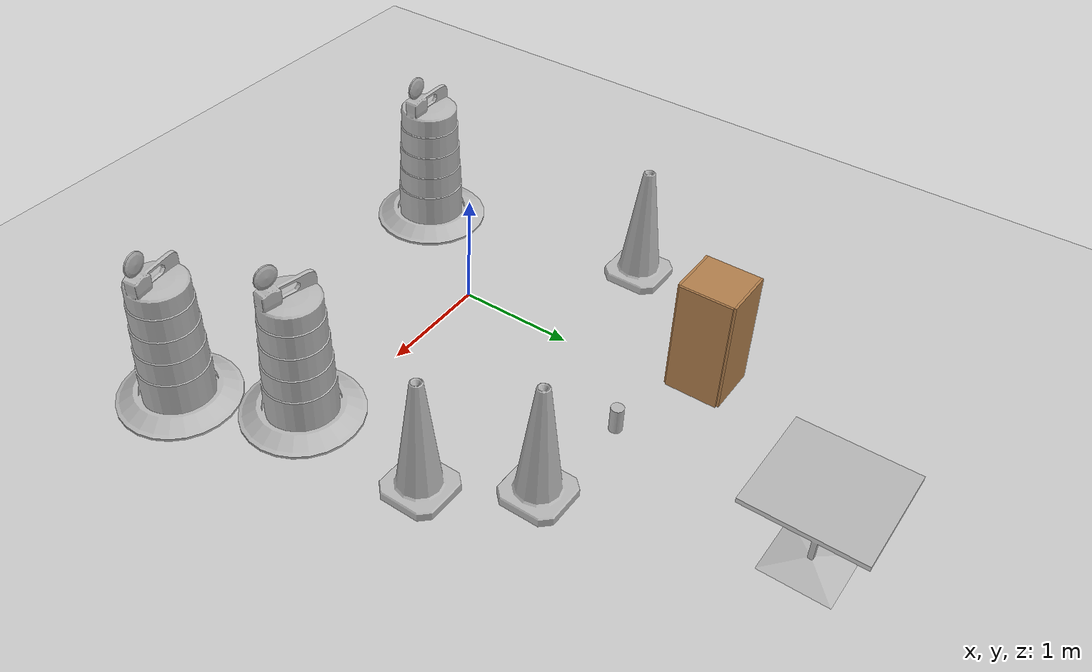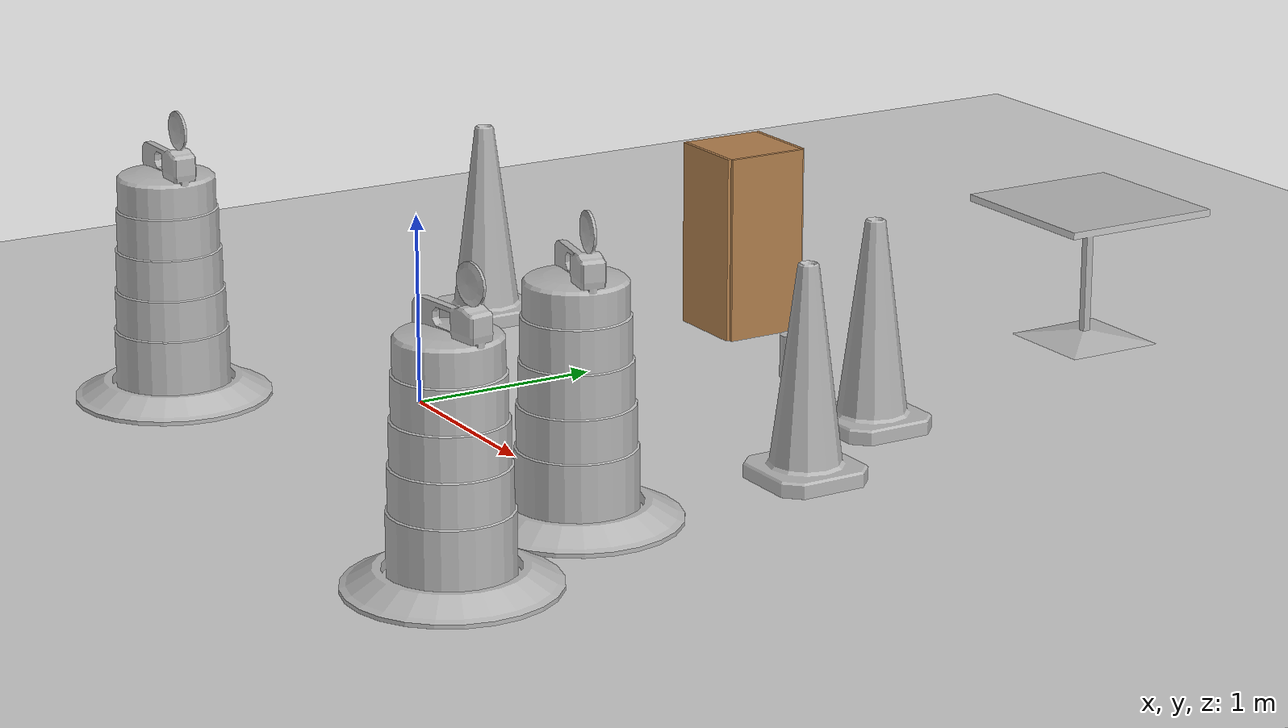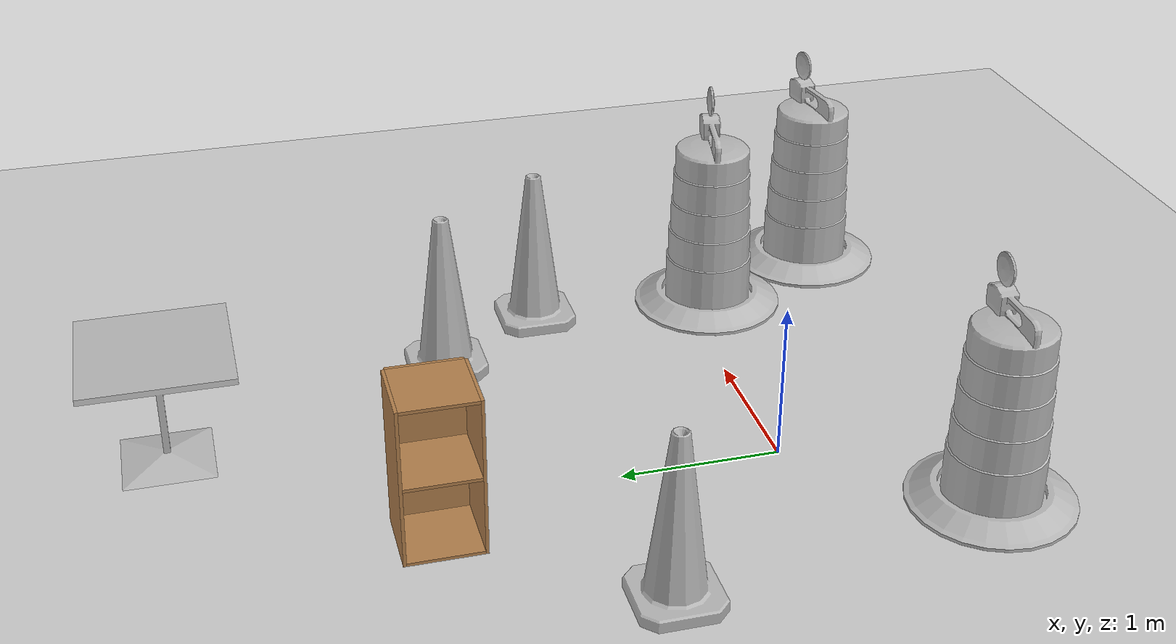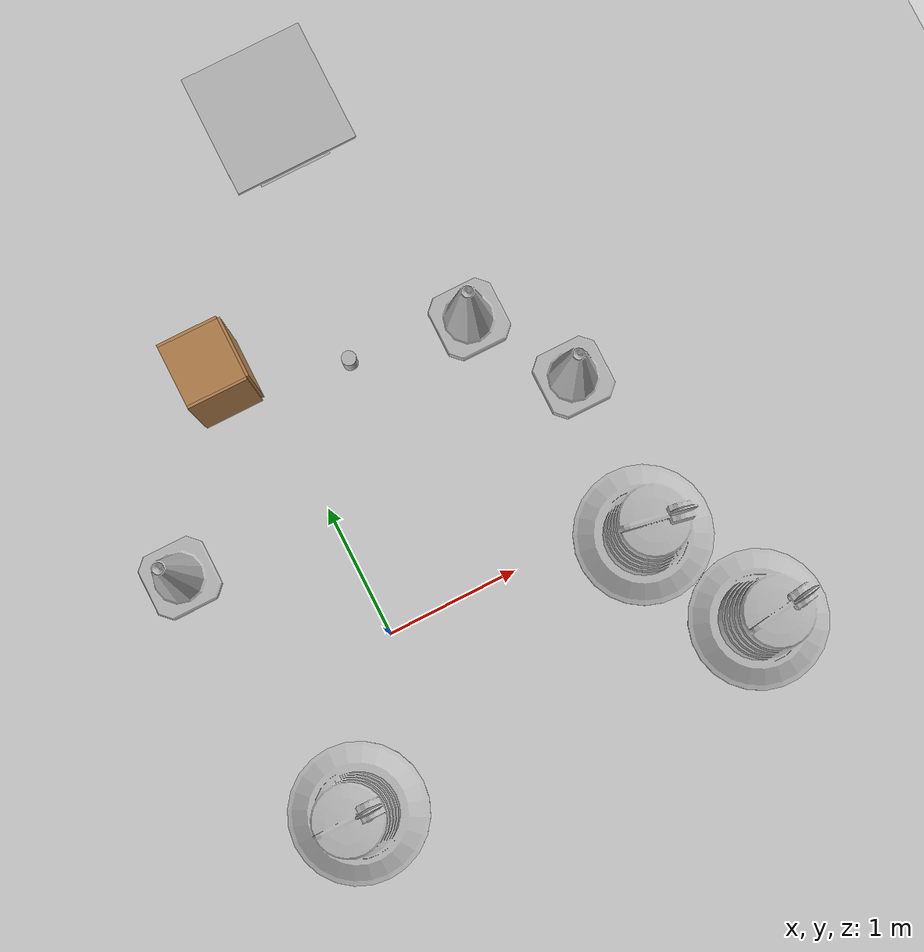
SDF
<sdf version="1.7">
 <world name="default">
  <light name="sun" type="directional">
   <pose>0 0 10 0 -0 0</pose>
   <diffuse>0.8 0.8 0.8 1</diffuse>
   <specular>0.2 0.2 0.2 1</specular>
   <attenuation>
    <range>1000</range>
    <constant>0.9</constant>
    <linear>0.01</linear>
    <quadratic>0.001</quadratic>
   </attenuation>
   <direction>-0.5 0.1 -0.9</direction>
   <spot><inner_angle>0</inner_angle><outer_angle>0</outer_angle><falloff>0</falloff></spot>
  </light>
  <model name="ground_plane">
   <static>1</static>
   <link name="link">
    <collision name="collision">
     <geometry><plane><normal>0 0 1</normal><size>100 100</size></plane></geometry>
     <surface><friction><ode><mu>100</mu><mu2>50</mu2></ode></friction></surface>
    </collision>
    <visual name="visual">
     <cast_shadows>0</cast_shadows>
     <geometry><plane><normal>0 0 1</normal><size>100 100</size></plane></geometry>
     <material>
      <script><uri>file://media/materials/scripts/gazebo.material</uri><name>Gazebo/Grey</name></script>
     </material>
    </visual>
   </link>
  </model>
  <gravity>0 0 -9.8</gravity>
  <magnetic_field>6e-06 2.3e-05 -4.2e-05</magnetic_field>
  <atmosphere type="adiabatic"/>
  <physics type="ode">
   <max_step_size>0.001</max_step_size>
   <real_time_factor>1</real_time_factor>
   <real_time_update_rate>1000</real_time_update_rate>
  </physics>
  <scene><ambient>0.4 0.4 0.4 1</ambient><background>0.7 0.7 0.7 1</background><shadows>1</shadows></scene>
  <audio><device>default</device></audio>
  <spherical_coordinates>
   <surface_model>EARTH_WGS84</surface_model>
   <latitude_deg>0</latitude_deg>
   <longitude_deg>0</longitude_deg>
   <elevation>0</elevation>
   <heading_deg>0</heading_deg>
  </spherical_coordinates>
  <light name="sun" type="directional">
   <pose>-2.60139 -0.412845 10 0 -0 0</pose>
   <diffuse>0.8 0.8 0.8 1</diffuse>
   <specular>0.2 0.2 0.2 1</specular>
   <attenuation>
    <range>1000</range>
    <constant>0.9</constant>
    <linear>0.01</linear>
    <quadratic>0.001</quadratic>
   </attenuation>
   <direction>-0.5 0.1 -0.9</direction>
  </light>
  <model name="beer">
   <link name="link">
    <pose>0 0 0.115 0 -0 0</pose>
    <inertial>
     <mass>0.39</mass>
     <inertia><ixx>0.00058</ixx><ixy>0</ixy><ixz>0</ixz><iyy>0.00058</iyy><iyz>0</iyz><izz>0.00019</izz></inertia>
    </inertial>
    <collision name="collision">
     <geometry><cylinder><radius>0.055</radius><length>0.23</length></cylinder></geometry>
    </collision>
    <visual name="visual">
     <geometry><cylinder><radius>0.055</radius><length>0.23</length></cylinder></geometry>
     <material>
      <script>
       <uri>model://beer/materials/scripts</uri>
       <uri>model://beer/materials/textures</uri>
       <name>Beer/Diffuse</name>
      </script>
     </material>
    </visual>
   </link>
   <pose>0.616062 1.88125 -7e-06 0 0 -1e-05</pose>
  </model>
  <model name="cabinet">
   <static>1</static>
   <link name="cabinet_bottom_plate">
    <inertial>
     <pose>0 0 -1 0 -0 0</pose>
     <inertia><ixx>2.05</ixx><ixy>0</ixy><ixz>0</ixz><iyy>2.05</iyy><iyz>0</iyz><izz>2.05</izz></inertia>
     <mass>25</mass>
    </inertial>
    <collision name="cabinet_bottom_plate_geom">
     <pose>0 0 0.01 0 -0 0</pose>
     <geometry><box><size>0.45 0.45 0.02</size></box></geometry>
    </collision>
    <visual name="cabinet_bottom_plate_geom_visual">
     <pose>0 0 0.01 0 -0 0</pose>
     <geometry><box><size>0.45 0.45 0.02</size></box></geometry>
     <material>
      <script><uri>file://media/materials/scripts/gazebo.material</uri><name>Gazebo/Wood</name></script>
     </material>
    </visual>
    <collision name="cabinet_bottom_plate_geom_cabinet_back_plate">
     <pose>0.235 0 0.51 0 -0 0</pose>
     <geometry><box><size>0.02 0.45 1.02</size></box></geometry>
    </collision>
    <visual name="cabinet_bottom_plate_geom_cabinet_back_plate_visual">
     <pose>0.235 0 0.51 0 -0 0</pose>
     <geometry><box><size>0.02 0.45 1.02</size></box></geometry>
     <material>
      <script><uri>file://media/materials/scripts/gazebo.material</uri><name>Gazebo/Wood</name></script>
     </material>
    </visual>
    <collision name="cabinet_bottom_plate_geom_cabinet_left_plate">
     <pose>0 0.235 0.51 0 -0 0</pose>
     <geometry><box><size>0.45 0.02 1.02</size></box></geometry>
    </collision>
    <visual name="cabinet_bottom_plate_geom_cabinet_left_plate_visual">
     <pose>0 0.235 0.51 0 -0 0</pose>
     <geometry><box><size>0.45 0.02 1.02</size></box></geometry>
     <material>
      <script><uri>file://media/materials/scripts/gazebo.material</uri><name>Gazebo/Wood</name></script>
     </material>
    </visual>
    <collision name="cabinet_bottom_plate_geom_cabinet_middle_plate">
     <pose>0 0 0.51 0 -0 0</pose>
     <geometry><box><size>0.45 0.45 0.02</size></box></geometry>
    </collision>
    <visual name="cabinet_bottom_plate_geom_cabinet_middle_plate_visual">
     <pose>0 0 0.51 0 -0 0</pose>
     <geometry><box><size>0.45 0.45 0.02</size></box></geometry>
     <material>
      <script><uri>file://media/materials/scripts/gazebo.material</uri><name>Gazebo/Wood</name></script>
     </material>
    </visual>
    <collision name="cabinet_bottom_plate_geom_cabinet_right_plate">
     <pose>0 -0.235 0.51 0 -0 0</pose>
     <geometry><box><size>0.45 0.02 1.02</size></box></geometry>
    </collision>
    <visual name="cabinet_bottom_plate_geom_cabinet_right_plate_visual">
     <pose>0 -0.235 0.51 0 -0 0</pose>
     <geometry><box><size>0.45 0.02 1.02</size></box></geometry>
     <material>
      <script><uri>file://media/materials/scripts/gazebo.material</uri><name>Gazebo/Wood</name></script>
     </material>
    </visual>
    <collision name="cabinet_bottom_plate_geom_cabinet_top_plate">
     <pose>0 0 1.01 0 -0 0</pose>
     <geometry><box><size>0.45 0.45 0.02</size></box></geometry>
    </collision>
    <visual name="cabinet_bottom_plate_geom_cabinet_top_plate_visual">
     <pose>0 0 1.01 0 -0 0</pose>
     <geometry><box><size>0.45 0.45 0.02</size></box></geometry>
     <material>
      <script><uri>file://media/materials/scripts/gazebo.material</uri><name>Gazebo/Wood</name></script>
     </material>
    </visual>
   </link>
   <pose>-0.296742 2.16793 0 0 -0 0</pose>
  </model>
  <model name="cafe_table">
   <static>1</static>
   <link name="link">
    <collision name="surface">
     <pose>0 0 0.755 0 -0 0</pose>
     <geometry><box><size>0.913 0.913 0.04</size></box></geometry>
    </collision>
    <collision name="column">
     <pose>0 0 0.37 0 -0 0</pose>
     <geometry><box><size>0.042 0.042 0.74</size></box></geometry>
    </collision>
    <collision name="base">
     <pose>0 0 0.02 0 -0 0</pose>
     <geometry><box><size>0.56 0.56 0.04</size></box></geometry>
    </collision>
    <visual name="visual">
     <geometry><mesh><uri>model://cafe_table/meshes/cafe_table.dae</uri></mesh></geometry>
    </visual>
   </link>
   <pose>0.894424 3.62293 0 0 -0 0</pose>
  </model>
  <model name="Construction Cone">
   <link name="link">
    <collision name="collision">
     <geometry>
      <mesh><scale>10 10 10</scale><uri>model://construction_cone/meshes/construction_cone.dae</uri></mesh>
     </geometry>
    </collision>
    <visual name="visual">
     <geometry>
      <mesh><scale>10 10 10</scale><uri>model://construction_cone/meshes/construction_cone.dae</uri></mesh>
     </geometry>
    </visual>
    <inertial>
     <inertia><ixx>1</ixx><ixy>0</ixy><ixz>0</ixz><iyy>1</iyy><iyz>0</iyz><izz>1</izz></inertia>
     <mass>1</mass>
    </inertial>
   </link>
   <pose>2.00631 1.05379 -0 0 -1e-06 0</pose>
  </model>
  <model name="Construction Cone_clone">
   <link name="link">
    <collision name="collision">
     <geometry>
      <mesh><scale>10 10 10</scale><uri>model://construction_cone/meshes/construction_cone.dae</uri></mesh>
     </geometry>
    </collision>
    <visual name="visual">
     <geometry>
      <mesh><scale>10 10 10</scale><uri>model://construction_cone/meshes/construction_cone.dae</uri></mesh>
     </geometry>
    </visual>
    <inertial>
     <inertia><ixx>1</ixx><ixy>0</ixy><ixz>0</ixz><iyy>1</iyy><iyz>0</iyz><izz>1</izz></inertia>
     <mass>1</mass>
    </inertial>
   </link>
   <pose>-1.16583 1.03278 -0 0 -0 0</pose>
  </model>
  <model name="Construction Barrel">
   <link name="link">
    <inertial>
     <pose>0 0 0.4 0 -0 0</pose>
     <mass>500</mass>
     <inertia><ixx>51.2096</ixx><iyy>51.2096</iyy><izz>25</izz><ixy>0</ixy><ixz>0</ixz><iyz>0</iyz></inertia>
    </inertial>
    <collision name="collision">
     <geometry><mesh><uri>model://construction_barrel/meshes/construction_barrel.dae</uri></mesh></geometry>
    </collision>
    <visual name="visual">
     <geometry><mesh><uri>model://construction_barrel/meshes/construction_barrel.dae</uri></mesh></geometry>
    </visual>
   </link>
   <pose>1.93691 -0.187379 -1e-06 3e-06 -1e-06 -0.191338</pose>
  </model>
  <model name="Construction Cone_clone_0">
   <link name="link">
    <collision name="collision">
     <geometry>
      <mesh><scale>10 10 10</scale><uri>model://construction_cone/meshes/construction_cone.dae</uri></mesh>
     </geometry>
    </collision>
    <visual name="visual">
     <geometry>
      <mesh><scale>10 10 10</scale><uri>model://construction_cone/meshes/construction_cone.dae</uri></mesh>
     </geometry>
    </visual>
    <inertial>
     <inertia><ixx>1</ixx><ixy>0</ixy><ixz>0</ixz><iyy>1</iyy><iyz>0</iyz><izz>1</izz></inertia>
     <mass>1</mass>
    </inertial>
   </link>
   <pose>1.52627 1.77521 -0 0 -1e-06 0</pose>
  </model>
  <model name="Construction Barrel_0">
   <link name="link">
    <inertial>
     <pose>0 0 0.4 0 -0 0</pose>
     <mass>500</mass>
     <inertia><ixx>51.2096</ixx><iyy>51.2096</iyy><izz>25</izz><ixy>0</ixy><ixz>0</ixz><iyz>0</iyz></inertia>
    </inertial>
    <collision name="collision">
     <geometry><mesh><uri>model://construction_barrel/meshes/construction_barrel.dae</uri></mesh></geometry>
    </collision>
    <visual name="visual">
     <geometry><mesh><uri>model://construction_barrel/meshes/construction_barrel.dae</uri></mesh></geometry>
    </visual>
   </link>
   <pose>-0.76928 -1.03677 0 0 -0 -7e-06</pose>
  </model>
  <model name="Construction Barrel_clone">
   <link name="link">
    <inertial>
     <pose>0 0 0.4 0 -0 0</pose>
     <mass>500</mass>
     <inertia><ixx>51.2096</ixx><iyy>51.2096</iyy><izz>25</izz><ixy>0</ixy><ixz>0</ixz><iyz>0</iyz></inertia>
    </inertial>
    <collision name="collision">
     <geometry><mesh><uri>model://construction_barrel/meshes/construction_barrel.dae</uri></mesh></geometry>
    </collision>
    <visual name="visual">
     <geometry><mesh><uri>model://construction_barrel/meshes/construction_barrel.dae</uri></mesh></geometry>
    </visual>
   </link>
   <pose>2.3946 -1.09861 -2e-06 1e-06 8e-06 0.141097</pose>
  </model>
 </world>
</sdf>
